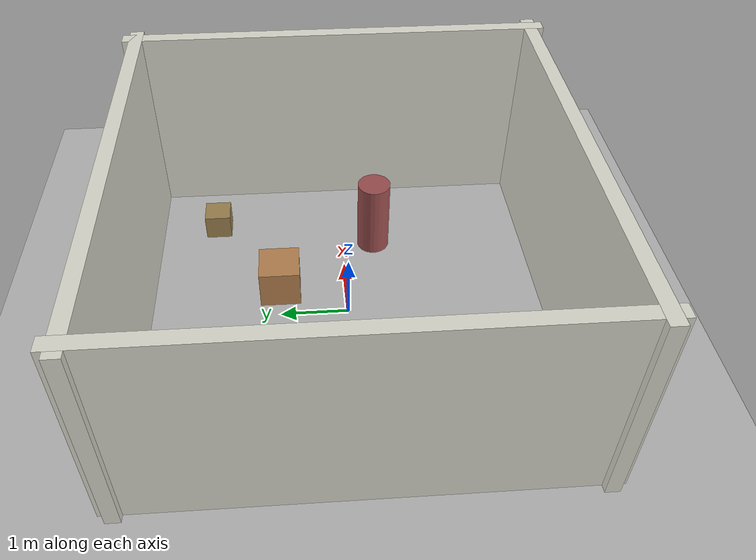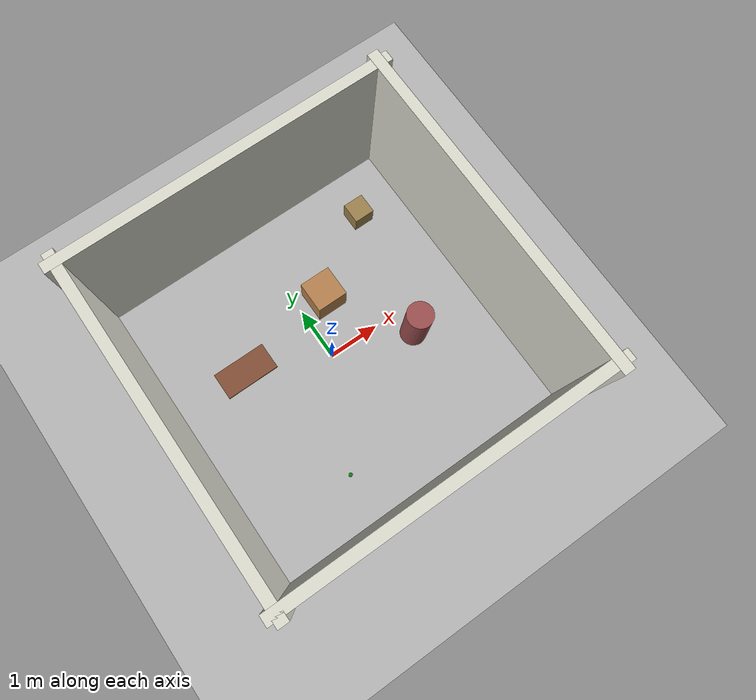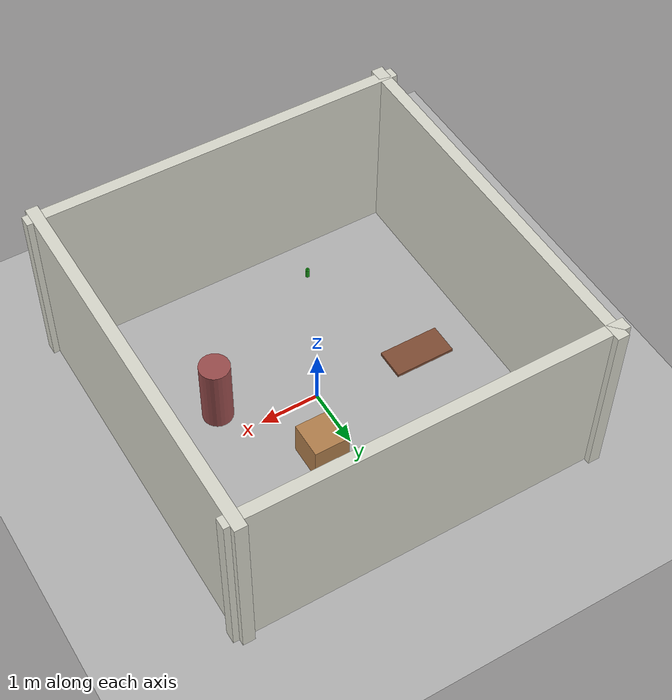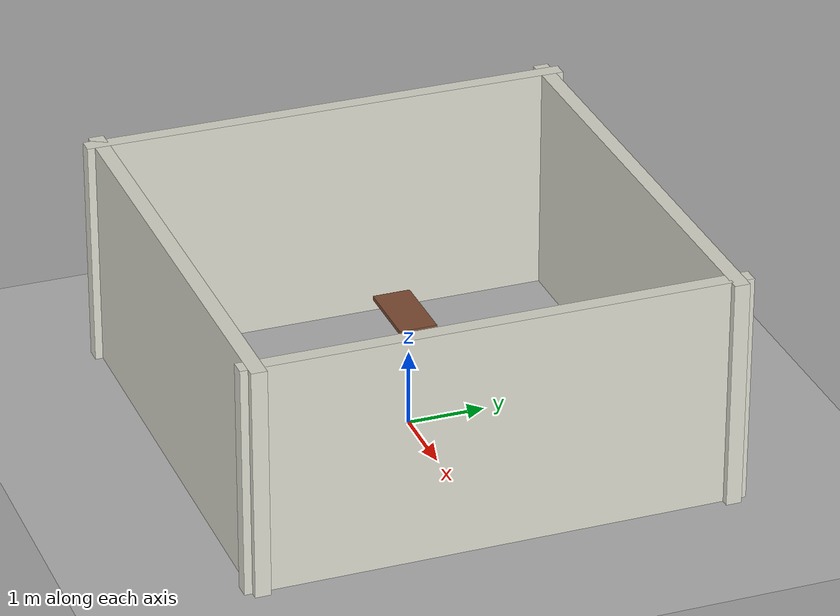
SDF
<sdf version="1.6">
 <world name="indoor_env">
  <light name="sun" type="directional">
   <pose>0 0 10 0 0 0</pose>
   <diffuse>0.8 0.8 0.8 1</diffuse>
   <specular>0.2 0.2 0.2 1</specular>
   <direction>-0.5 0.1 -0.9</direction>
  </light>
  <light name="room_light" type="point">
   <pose>0 0 2.5 0 0 0</pose>
   <diffuse>0.8 0.8 0.8 1</diffuse>
   <specular>0.2 0.2 0.2 1</specular>
   <attenuation>
    <range>10</range>
    <constant>0.5</constant>
    <linear>0.1</linear>
    <quadratic>0.01</quadratic>
   </attenuation>
  </light>
  <model name="ground_plane">
   <static>true</static>
   <link name="link">
    <collision name="collision">
     <geometry><plane><normal>0 0 1</normal><size>20 20</size></plane></geometry>
     <surface><friction><ode><mu>100</mu><mu2>50</mu2></ode></friction></surface>
    </collision>
    <visual name="visual">
     <geometry><plane><normal>0 0 1</normal><size>20 20</size></plane></geometry>
     <material><ambient>0.7 0.7 0.7 1</ambient><diffuse>0.7 0.7 0.7 1</diffuse></material>
    </visual>
   </link>
  </model>
  <model name="wall_north">
   <static>true</static>
   <pose>0 3 1.5 0 0 0</pose>
   <link name="link">
    <collision name="collision"><geometry><box><size>6.4 0.2 3.0</size></box></geometry></collision>
    <visual name="visual">
     <geometry><box><size>6.4 0.2 3.0</size></box></geometry>
     <material><ambient>0.85 0.85 0.8 1</ambient><diffuse>0.85 0.85 0.8 1</diffuse></material>
    </visual>
   </link>
  </model>
  <model name="wall_south">
   <static>true</static>
   <pose>0 -3 1.5 0 0 0</pose>
   <link name="link">
    <collision name="collision"><geometry><box><size>6.4 0.2 3.0</size></box></geometry></collision>
    <visual name="visual">
     <geometry><box><size>6.4 0.2 3.0</size></box></geometry>
     <material><ambient>0.85 0.85 0.8 1</ambient><diffuse>0.85 0.85 0.8 1</diffuse></material>
    </visual>
   </link>
  </model>
  <model name="wall_east">
   <static>true</static>
   <pose>3 0 1.5 0 0 1.5708</pose>
   <link name="link">
    <collision name="collision"><geometry><box><size>6.4 0.2 3.0</size></box></geometry></collision>
    <visual name="visual">
     <geometry><box><size>6.4 0.2 3.0</size></box></geometry>
     <material><ambient>0.85 0.85 0.8 1</ambient><diffuse>0.85 0.85 0.8 1</diffuse></material>
    </visual>
   </link>
  </model>
  <model name="wall_west">
   <static>true</static>
   <pose>-3 0 1.5 0 0 1.5708</pose>
   <link name="link">
    <collision name="collision"><geometry><box><size>6.4 0.2 3.0</size></box></geometry></collision>
    <visual name="visual">
     <geometry><box><size>6.4 0.2 3.0</size></box></geometry>
     <material><ambient>0.85 0.85 0.8 1</ambient><diffuse>0.85 0.85 0.8 1</diffuse></material>
    </visual>
   </link>
  </model>
  <model name="box_obstacle_1">
   <static>true</static>
   <pose>0.5 1.0 0.3 0 0 0</pose>
   <link name="link">
    <collision name="collision"><geometry><box><size>0.6 0.6 0.6</size></box></geometry></collision>
    <visual name="visual">
     <geometry><box><size>0.6 0.6 0.6</size></box></geometry>
     <material><ambient>0.7 0.5 0.3 1</ambient><diffuse>0.7 0.5 0.3 1</diffuse></material>
    </visual>
   </link>
  </model>
  <model name="table_obstacle">
   <static>true</static>
   <pose>-1.5 0.5 0 0 0 0</pose>
   <link name="link">
    <collision name="top_collision">
     <pose>0 0 0.7 0 0 0</pose>
     <geometry><box><size>1.0 0.5 0.05</size></box></geometry>
    </collision>
    <visual name="top_visual">
     <pose>0 0 0.7 0 0 0</pose>
     <geometry><box><size>1.0 0.5 0.05</size></box></geometry>
     <material><ambient>0.5 0.3 0.2 1</ambient><diffuse>0.5 0.3 0.2 1</diffuse></material>
    </visual>
    <collision name="leg1_collision">
     <pose>0.45 0.2 0.35 0 0 0</pose>
     <geometry><cylinder><radius>0.03</radius><length>0.7</length></cylinder></geometry>
    </collision>
    <collision name="leg2_collision">
     <pose>-0.45 0.2 0.35 0 0 0</pose>
     <geometry><cylinder><radius>0.03</radius><length>0.7</length></cylinder></geometry>
    </collision>
    <collision name="leg3_collision">
     <pose>0.45 -0.2 0.35 0 0 0</pose>
     <geometry><cylinder><radius>0.03</radius><length>0.7</length></cylinder></geometry>
    </collision>
    <collision name="leg4_collision">
     <pose>-0.45 -0.2 0.35 0 0 0</pose>
     <geometry><cylinder><radius>0.03</radius><length>0.7</length></cylinder></geometry>
    </collision>
   </link>
  </model>
  <model name="cylinder_obstacle">
   <static>true</static>
   <pose>1.5 -0.5 0.6 0 0 0</pose>
   <link name="link">
    <collision name="collision">
     <geometry><cylinder><radius>0.25</radius><length>1.2</length></cylinder></geometry>
    </collision>
    <visual name="visual">
     <geometry><cylinder><radius>0.25</radius><length>1.2</length></cylinder></geometry>
     <material><ambient>0.6 0.3 0.3 1</ambient><diffuse>0.6 0.3 0.3 1</diffuse></material>
    </visual>
   </link>
  </model>
  <model name="box_obstacle_2">
   <static>true</static>
   <pose>2.0 2.0 0.2 0 0 0</pose>
   <link name="link">
    <collision name="collision"><geometry><box><size>0.4 0.4 0.4</size></box></geometry></collision>
    <visual name="visual">
     <geometry><box><size>0.4 0.4 0.4</size></box></geometry>
     <material><ambient>0.6 0.5 0.3 1</ambient><diffuse>0.6 0.5 0.3 1</diffuse></material>
    </visual>
   </link>
  </model>
  <model name="target_bottle">
   <pose>-1.0 -2.0 0.4 0 0 0</pose>
   <link name="link">
    <inertial><mass value="0.5"/><inertia ixx="0.001" ixy="0" ixz="0" iyy="0.001" iyz="0" izz="0.001"/></inertial>
    <collision name="collision">
     <geometry><cylinder><radius>0.035</radius><length>0.2</length></cylinder></geometry>
    </collision>
    <visual name="body">
     <geometry><cylinder><radius>0.035</radius><length>0.15</length></cylinder></geometry>
     <material><ambient>0.1 0.6 0.1 1</ambient><diffuse>0.1 0.6 0.1 1</diffuse></material>
    </visual>
    <visual name="neck">
     <pose>0 0 0.09 0 0 0</pose>
     <geometry><cylinder><radius>0.015</radius><length>0.05</length></cylinder></geometry>
     <material><ambient>0.1 0.6 0.1 1</ambient><diffuse>0.1 0.6 0.1 1</diffuse></material>
    </visual>
   </link>
  </model>
  <physics type="ode">
   <real_time_update_rate>1000</real_time_update_rate>
   <max_step_size>0.001</max_step_size>
   <real_time_factor>1</real_time_factor>
  </physics>
  <scene><ambient>0.4 0.4 0.4 1</ambient><background>0.7 0.7 0.7 1</background><shadows>true</shadows></scene>
 </world>
</sdf>
